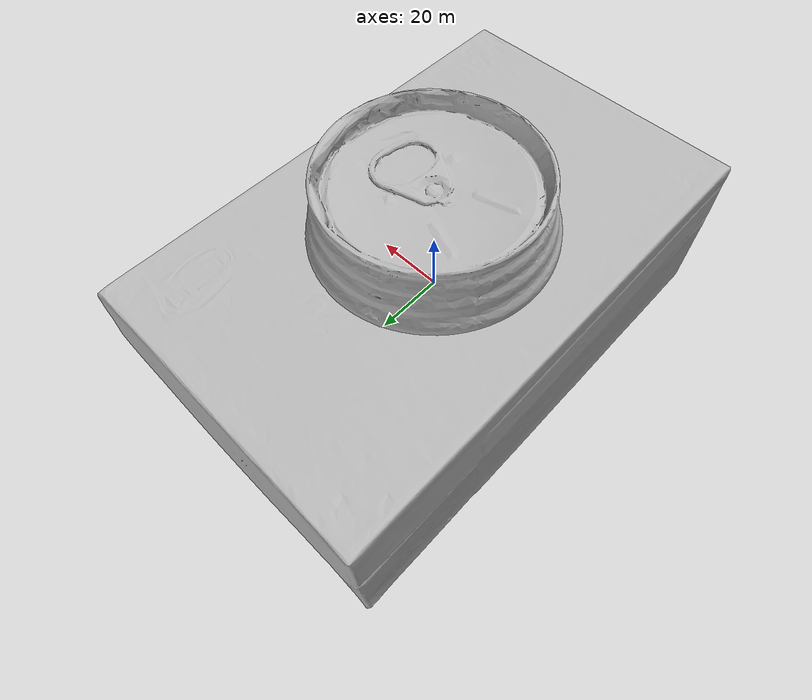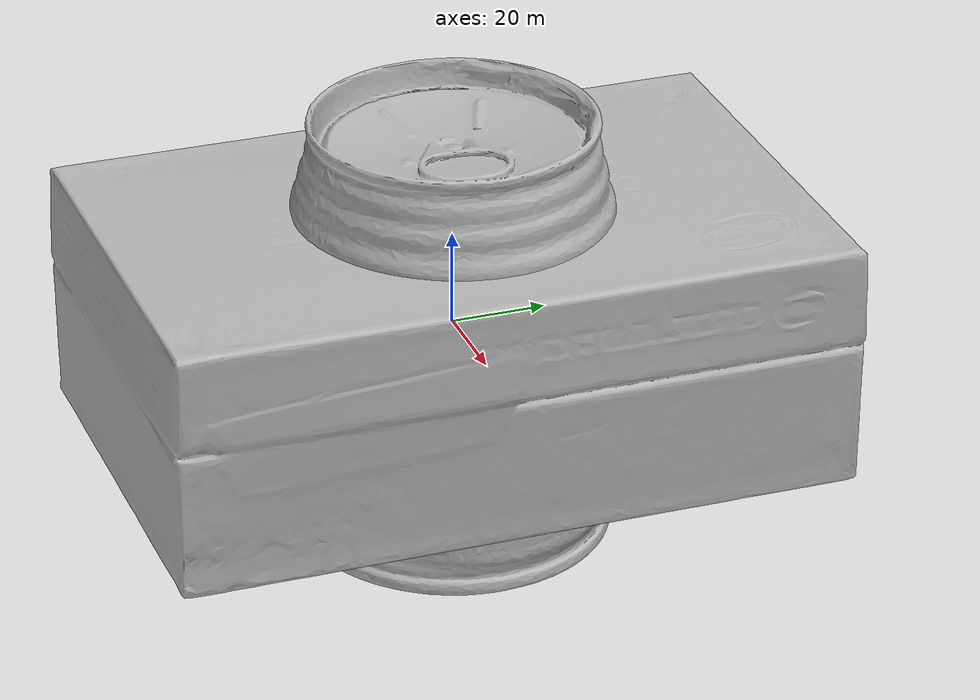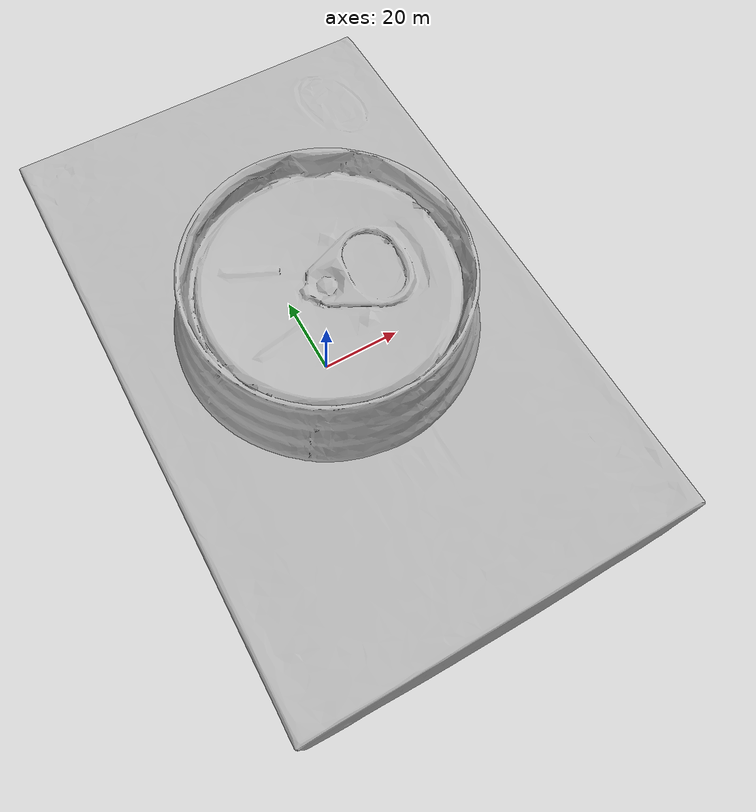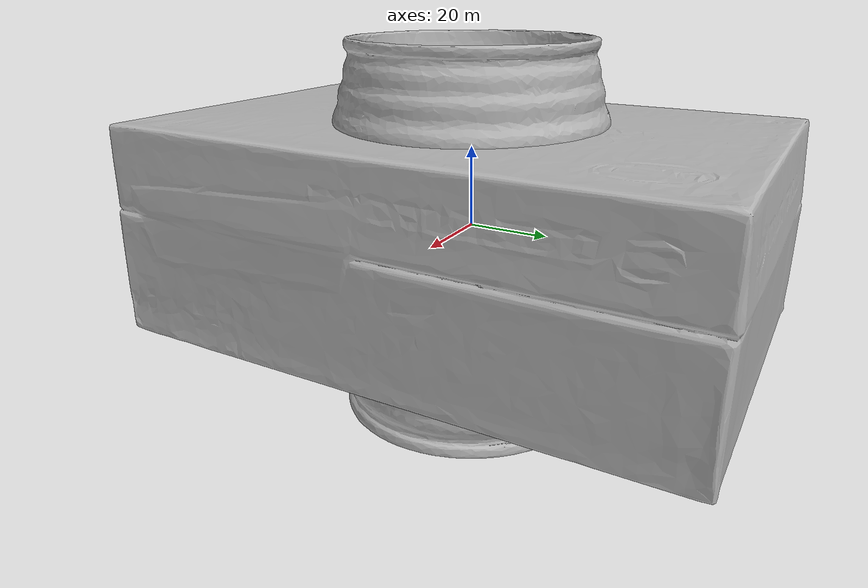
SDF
<sdf version="1.4">
 <world name="default">
  <light name="light1" type="point">
   <pose>0 0 1 0 0 0</pose>
   <diffuse>3 3 3 1</diffuse>
   <specular>3 3 3 1</specular>
  </light>
  <light name="light2" type="point">
   <pose>0 0.5 2 0 0 0</pose>
   <diffuse>1 1 1 1</diffuse>
   <specular>1 1 1 1</specular>
  </light>
  <light name="light3" type="point">
   <pose>0 0.5 2 0 0 0</pose>
   <diffuse>3 3 3 1</diffuse>
   <specular>3 3 3 1</specular>
  </light>
  <scene><ambient>0.7 0.7 0.7</ambient></scene>
  <model name="box1">
   <link name="link_box1">
    <collision name="default">
     <geometry>
      <mesh><uri>model://realsense_box/collision_meshes/collision.obj</uri><scale>1.0 1.0 1.0</scale></mesh>
     </geometry>
     <surface>
      <friction><ode><mu>0.5</mu><mu2>0.5</mu2></ode></friction>
      <contact><ode><max_vel>0</max_vel><min_depth>0.0001</min_depth><kp>1e8</kp></ode></contact>
     </surface>
    </collision>
    <visual name="default">
     <geometry>
      <mesh><uri>model://realsense_box/visual_meshes/visual.dae</uri><scale>1.0 1.0 1.0</scale></mesh>
     </geometry>
    </visual>
    <inertial>
     <mass>0.9783616662025452</mass>
     <pose>4.0744838770478964e-05 8.587493357481435e-05 -2.4153794583980925e-05 -0.00012602841694551038 -0.006358939977979225 0.005012324824875736</pose>
     <inertia>
      <ixx>0.0009306729</ixx>
      <iyy>0.0019425071</iyy>
      <izz>0.002403061</izz>
      <ixy>0</ixy>
      <ixz>0</ixz>
      <iyz>0</iyz>
     </inertia>
    </inertial>
   </link>
   <pose>0.23774583637714386 -0.3270437717437744 0.027315998449921608 -6.268575373272385e-08 1.1608148197588654e-08 -1.5807313489019126</pose>
  </model>
  <model name="box2">
   <link name="link_box2">
    <collision name="default">
     <geometry>
      <mesh><uri>model://wooden_puzzle2/collision_meshes/collision.obj</uri><scale>1.0 1.0 1.0</scale></mesh>
     </geometry>
     <surface>
      <friction><ode><mu>0.5</mu><mu2>0.5</mu2></ode></friction>
      <contact><ode><max_vel>0</max_vel><min_depth>0.0001</min_depth><kp>1e8</kp></ode></contact>
     </surface>
    </collision>
    <visual name="default">
     <geometry>
      <mesh><uri>model://wooden_puzzle2/visual_meshes/visual.dae</uri><scale>1.0 1.0 1.0</scale></mesh>
     </geometry>
    </visual>
    <inertial>
     <mass>0.024048319086432457</mass>
     <pose>2.7402536943554878e-05 4.997663199901581e-05 6.587122334167361e-05 -0.19203048535200862 0.6112800928970119 -0.6338660341545117</pose>
     <inertia>
      <ixx>4.470326e-06</ixx>
      <iyy>4.593511e-06</iyy>
      <izz>4.528165e-06</izz>
      <ixy>0</ixy>
      <ixz>0</ixz>
      <iyz>0</iyz>
     </inertia>
    </inertial>
   </link>
   <pose>0.2829335033893585 0.21976837515830994 0.016917729750275612 0.02084892841936554 0.0007206314788386135 1.6160710802032552</pose>
  </model>
  <model name="can1">
   <link name="link_can1">
    <collision name="default">
     <geometry>
      <mesh><uri>model://redbull/collision_meshes/collision.obj</uri><scale>1.0 1.0 1.0</scale></mesh>
     </geometry>
     <surface>
      <friction><ode><mu>0.5</mu><mu2>0.5</mu2></ode></friction>
      <contact><ode><max_vel>0</max_vel><min_depth>0.0001</min_depth><kp>1e8</kp></ode></contact>
     </surface>
    </collision>
    <visual name="default">
     <geometry>
      <mesh><uri>model://redbull/visual_meshes/visual.dae</uri><scale>1.0 1.0 1.0</scale></mesh>
     </geometry>
    </visual>
    <inertial>
     <mass>0.19214749336242676</mass>
     <pose>-2.212707477156073e-05 -0.00012659536150749773 -0.0006860988214612007 0.0011364686928787662 -0.01080099531045839 0.5859333437288349</pose>
     <inertia>
      <ixx>0.00018066002</ixx>
      <iyy>0.0001808125</iyy>
      <izz>0.0001072083</izz>
      <ixy>0</ixy>
      <ixz>0</ixz>
      <iyz>0</iyz>
     </inertia>
    </inertial>
   </link>
   <pose>0.10382556170225143 0.19768738746643066 0.04638564959168434 -0.010489002575654379 0.0072612463822191355 1.8843854657382524</pose>
  </model>
  <model name="can2">
   <link name="link_can2">
    <collision name="default">
     <geometry>
      <mesh><uri>model://pepsi/collision_meshes/collision.obj</uri><scale>1.0 1.0 1.0</scale></mesh>
     </geometry>
     <surface>
      <friction><ode><mu>0.5</mu><mu2>0.5</mu2></ode></friction>
      <contact><ode><max_vel>0</max_vel><min_depth>0.0001</min_depth><kp>1e8</kp></ode></contact>
     </surface>
    </collision>
    <visual name="default">
     <geometry><mesh><uri>model://pepsi/visual_meshes/visual.dae</uri><scale>1.0 1.0 1.0</scale></mesh></geometry>
    </visual>
    <inertial>
     <mass>0.3079187572002411</mass>
     <pose>-7.5590331107378e-05 2.9931279641459696e-05 -0.0003384356386959553 -0.0010678548810066889 -0.0021735327588889423 0.5674125845328797</pose>
     <inertia>
      <ixx>0.0006134332</ixx>
      <iyy>0.0006129863</iyy>
      <izz>0.0001305606</izz>
      <ixy>0</ixy>
      <ixz>0</ixz>
      <iyz>0</iyz>
     </inertia>
    </inertial>
   </link>
   <pose>-0.04812173545360565 0.21254760026931763 0.0744963213801384 -1.892829786376932e-05 2.1739532053404423e-06 0.06038599620904481</pose>
  </model>
  <physics type="ode">
   <max_contacts>50</max_contacts>
   <ode>
    <solver><type>quick</type><iters>75</iters></solver>
    <constraints>
     <contact_max_correcting_vel>0</contact_max_correcting_vel>
     <contact_surface_layer>0</contact_surface_layer>
    </constraints>
   </ode>
  </physics>
 </world>
</sdf>
